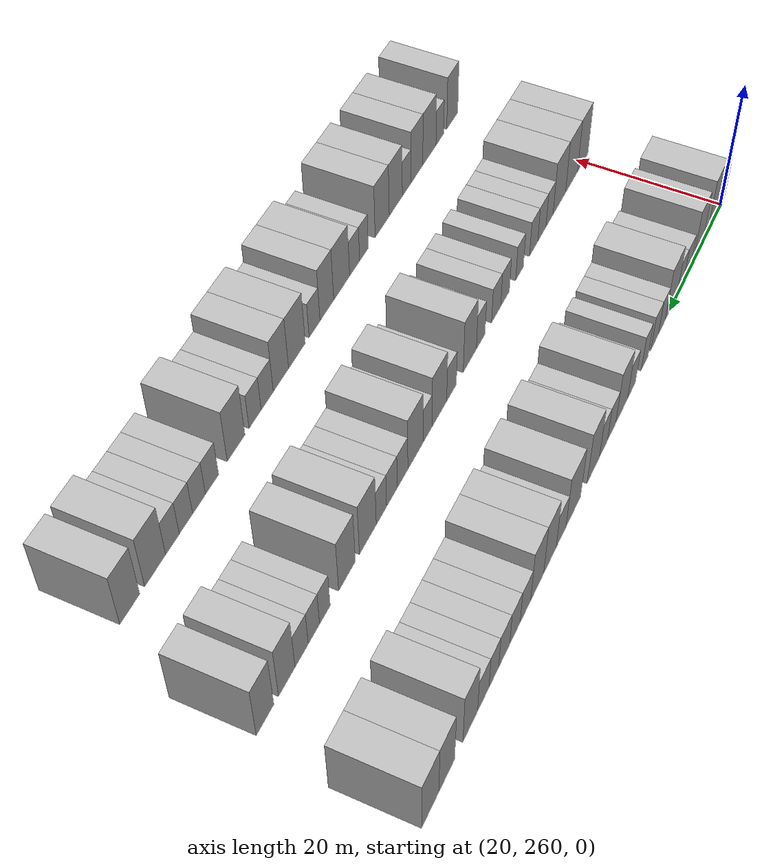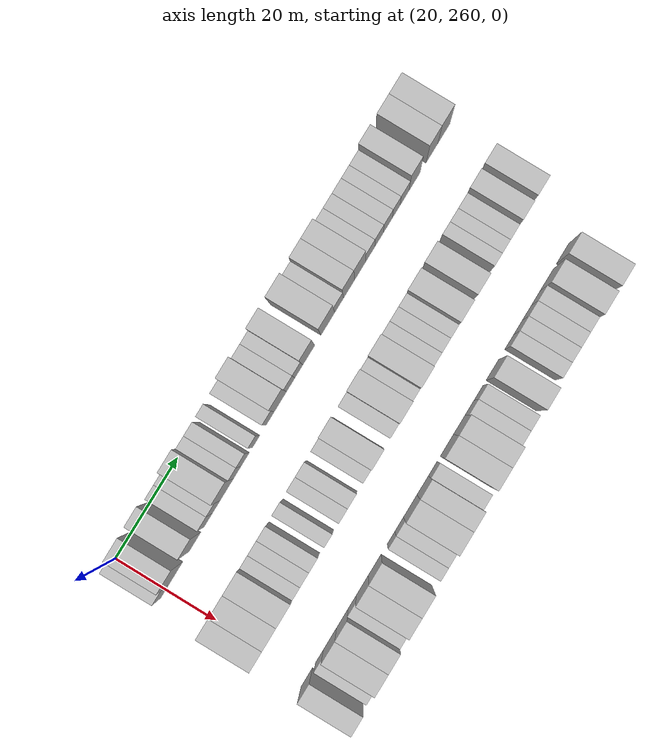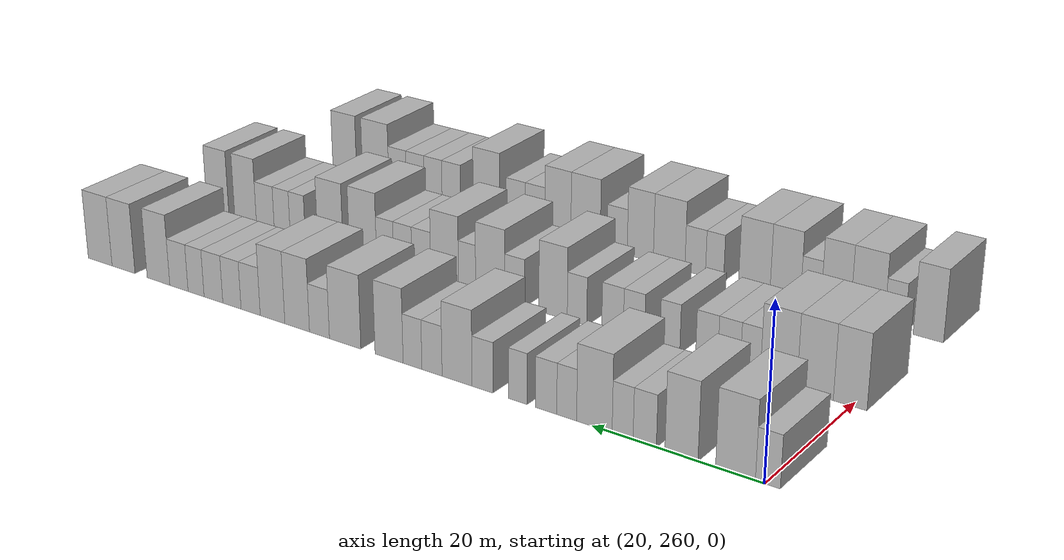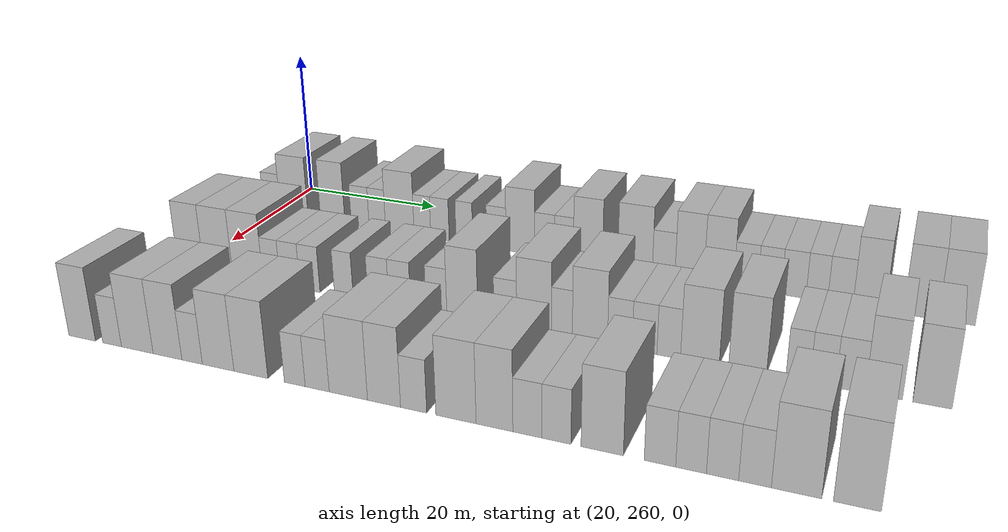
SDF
<sdf version="1.6">
 <world name="default">
  <model name="building_152">
   <static>1</static>
   <pose>25.0000 259.6767 0 0.000000 0.000000 0.000000</pose>
   <link name="link">
    <pose>0 0 3.00 0 0 0</pose>
    <collision name="collision"><geometry><box><size>10.0000 2.7289 6.0000</size></box></geometry></collision>
    <visual name="visual">
     <cast_shadows>0</cast_shadows>
     <geometry><box><size>10.0000 2.7289 6.0000</size></box></geometry>
     <material>
      <script>
       <uri>model://HANNAS_wall/materials/scripts</uri>
       <uri>model://HANNAS_wall/materials/textures</uri>
       <name>vrc/HANNAS_wall</name>
      </script>
     </material>
    </visual>
   </link>
  </model>
  <model name="building_153">
   <static>1</static>
   <pose>25.0000 263.2737 0 0.000000 0.000000 0.000000</pose>
   <link name="link">
    <pose>0 0 4.50 0 0 0</pose>
    <collision name="collision"><geometry><box><size>10.0000 4.4652 9.0000</size></box></geometry></collision>
    <visual name="visual">
     <cast_shadows>0</cast_shadows>
     <geometry><box><size>10.0000 4.4652 9.0000</size></box></geometry>
     <material>
      <script>
       <uri>model://HANNAS_wall/materials/scripts</uri>
       <uri>model://HANNAS_wall/materials/textures</uri>
       <name>vrc/HANNAS_wall</name>
      </script>
     </material>
    </visual>
   </link>
  </model>
  <model name="building_154">
   <static>1</static>
   <pose>25.0000 269.4197 0 0.000000 0.000000 0.000000</pose>
   <link name="link">
    <pose>0 0 4.50 0 0 0</pose>
    <collision name="collision"><geometry><box><size>10.0000 3.8267 9.0000</size></box></geometry></collision>
    <visual name="visual">
     <cast_shadows>0</cast_shadows>
     <geometry><box><size>10.0000 3.8267 9.0000</size></box></geometry>
     <material>
      <script>
       <uri>model://HANNAS_wall/materials/scripts</uri>
       <uri>model://HANNAS_wall/materials/textures</uri>
       <name>vrc/HANNAS_wall</name>
      </script>
     </material>
    </visual>
   </link>
  </model>
  <model name="building_155">
   <static>1</static>
   <pose>25.0000 273.7075 0 0.000000 0.000000 0.000000</pose>
   <link name="link">
    <pose>0 0 3.00 0 0 0</pose>
    <collision name="collision"><geometry><box><size>10.0000 2.7489 6.0000</size></box></geometry></collision>
    <visual name="visual">
     <cast_shadows>0</cast_shadows>
     <geometry><box><size>10.0000 2.7489 6.0000</size></box></geometry>
     <material>
      <script>
       <uri>model://HANNAS_wall/materials/scripts</uri>
       <uri>model://HANNAS_wall/materials/textures</uri>
       <name>vrc/HANNAS_wall</name>
      </script>
     </material>
    </visual>
   </link>
  </model>
  <model name="building_156">
   <static>1</static>
   <pose>25.0000 276.3399 0 0.000000 0.000000 0.000000</pose>
   <link name="link">
    <pose>0 0 3.00 0 0 0</pose>
    <collision name="collision"><geometry><box><size>10.0000 2.5160 6.0000</size></box></geometry></collision>
    <visual name="visual">
     <cast_shadows>0</cast_shadows>
     <geometry><box><size>10.0000 2.5160 6.0000</size></box></geometry>
     <material>
      <script>
       <uri>model://HANNAS_wall/materials/scripts</uri>
       <uri>model://HANNAS_wall/materials/textures</uri>
       <name>vrc/HANNAS_wall</name>
      </script>
     </material>
    </visual>
   </link>
  </model>
  <model name="building_157">
   <static>1</static>
   <pose>25.0000 279.7574 0 0.000000 0.000000 0.000000</pose>
   <link name="link">
    <pose>0 0 4.50 0 0 0</pose>
    <collision name="collision"><geometry><box><size>10.0000 4.3190 9.0000</size></box></geometry></collision>
    <visual name="visual">
     <cast_shadows>0</cast_shadows>
     <geometry><box><size>10.0000 4.3190 9.0000</size></box></geometry>
     <material>
      <script>
       <uri>model://HANNAS_wall/materials/scripts</uri>
       <uri>model://HANNAS_wall/materials/textures</uri>
       <name>vrc/HANNAS_wall</name>
      </script>
     </material>
    </visual>
   </link>
  </model>
  <model name="building_158">
   <static>1</static>
   <pose>25.0000 283.1476 0 0.000000 0.000000 0.000000</pose>
   <link name="link">
    <pose>0 0 3.00 0 0 0</pose>
    <collision name="collision"><geometry><box><size>10.0000 2.4614 6.0000</size></box></geometry></collision>
    <visual name="visual">
     <cast_shadows>0</cast_shadows>
     <geometry><box><size>10.0000 2.4614 6.0000</size></box></geometry>
     <material>
      <script>
       <uri>model://HANNAS_wall/materials/scripts</uri>
       <uri>model://HANNAS_wall/materials/textures</uri>
       <name>vrc/HANNAS_wall</name>
      </script>
     </material>
    </visual>
   </link>
  </model>
  <model name="building_159">
   <static>1</static>
   <pose>25.0000 285.7291 0 0.000000 0.000000 0.000000</pose>
   <link name="link">
    <pose>0 0 3.00 0 0 0</pose>
    <collision name="collision"><geometry><box><size>10.0000 2.7016 6.0000</size></box></geometry></collision>
    <visual name="visual">
     <cast_shadows>0</cast_shadows>
     <geometry><box><size>10.0000 2.7016 6.0000</size></box></geometry>
     <material>
      <script>
       <uri>model://HANNAS_wall/materials/scripts</uri>
       <uri>model://HANNAS_wall/materials/textures</uri>
       <name>vrc/HANNAS_wall</name>
      </script>
     </material>
    </visual>
   </link>
  </model>
  <model name="building_160">
   <static>1</static>
   <pose>25.0000 289.2823 0 0.000000 0.000000 0.000000</pose>
   <link name="link">
    <pose>0 0 3.00 0 0 0</pose>
    <collision name="collision"><geometry><box><size>10.0000 2.4048 6.0000</size></box></geometry></collision>
    <visual name="visual">
     <cast_shadows>0</cast_shadows>
     <geometry><box><size>10.0000 2.4048 6.0000</size></box></geometry>
     <material>
      <script>
       <uri>model://HANNAS_wall/materials/scripts</uri>
       <uri>model://HANNAS_wall/materials/textures</uri>
       <name>vrc/HANNAS_wall</name>
      </script>
     </material>
    </visual>
   </link>
  </model>
  <model name="building_161">
   <static>1</static>
   <pose>25.0000 293.8536 0 0.000000 0.000000 0.000000</pose>
   <link name="link">
    <pose>0 0 3.00 0 0 0</pose>
    <collision name="collision"><geometry><box><size>10.0000 2.7378 6.0000</size></box></geometry></collision>
    <visual name="visual">
     <cast_shadows>0</cast_shadows>
     <geometry><box><size>10.0000 2.7378 6.0000</size></box></geometry>
     <material>
      <script>
       <uri>model://HANNAS_wall/materials/scripts</uri>
       <uri>model://HANNAS_wall/materials/textures</uri>
       <name>vrc/HANNAS_wall</name>
      </script>
     </material>
    </visual>
   </link>
  </model>
  <model name="building_162">
   <static>1</static>
   <pose>25.0000 297.2160 0 0.000000 0.000000 0.000000</pose>
   <link name="link">
    <pose>0 0 4.50 0 0 0</pose>
    <collision name="collision"><geometry><box><size>10.0000 3.9871 9.0000</size></box></geometry></collision>
    <visual name="visual">
     <cast_shadows>0</cast_shadows>
     <geometry><box><size>10.0000 3.9871 9.0000</size></box></geometry>
     <material>
      <script>
       <uri>model://HANNAS_wall/materials/scripts</uri>
       <uri>model://HANNAS_wall/materials/textures</uri>
       <name>vrc/HANNAS_wall</name>
      </script>
     </material>
    </visual>
   </link>
  </model>
  <model name="building_163">
   <static>1</static>
   <pose>25.0000 300.5717 0 0.000000 0.000000 0.000000</pose>
   <link name="link">
    <pose>0 0 3.00 0 0 0</pose>
    <collision name="collision"><geometry><box><size>10.0000 2.7243 6.0000</size></box></geometry></collision>
    <visual name="visual">
     <cast_shadows>0</cast_shadows>
     <geometry><box><size>10.0000 2.7243 6.0000</size></box></geometry>
     <material>
      <script>
       <uri>model://HANNAS_wall/materials/scripts</uri>
       <uri>model://HANNAS_wall/materials/textures</uri>
       <name>vrc/HANNAS_wall</name>
      </script>
     </material>
    </visual>
   </link>
  </model>
  <model name="building_164">
   <static>1</static>
   <pose>25.0000 303.2186 0 0.000000 0.000000 0.000000</pose>
   <link name="link">
    <pose>0 0 3.00 0 0 0</pose>
    <collision name="collision"><geometry><box><size>10.0000 2.5694 6.0000</size></box></geometry></collision>
    <visual name="visual">
     <cast_shadows>0</cast_shadows>
     <geometry><box><size>10.0000 2.5694 6.0000</size></box></geometry>
     <material>
      <script>
       <uri>model://HANNAS_wall/materials/scripts</uri>
       <uri>model://HANNAS_wall/materials/textures</uri>
       <name>vrc/HANNAS_wall</name>
      </script>
     </material>
    </visual>
   </link>
  </model>
  <model name="building_165">
   <static>1</static>
   <pose>25.0000 306.4525 0 0.000000 0.000000 0.000000</pose>
   <link name="link">
    <pose>0 0 4.50 0 0 0</pose>
    <collision name="collision"><geometry><box><size>10.0000 3.8985 9.0000</size></box></geometry></collision>
    <visual name="visual">
     <cast_shadows>0</cast_shadows>
     <geometry><box><size>10.0000 3.8985 9.0000</size></box></geometry>
     <material>
      <script>
       <uri>model://HANNAS_wall/materials/scripts</uri>
       <uri>model://HANNAS_wall/materials/textures</uri>
       <name>vrc/HANNAS_wall</name>
      </script>
     </material>
    </visual>
   </link>
  </model>
  <model name="building_166">
   <static>1</static>
   <pose>25.0000 312.6498 0 0.000000 0.000000 0.000000</pose>
   <link name="link">
    <pose>0 0 4.50 0 0 0</pose>
    <collision name="collision"><geometry><box><size>10.0000 4.4961 9.0000</size></box></geometry></collision>
    <visual name="visual">
     <cast_shadows>0</cast_shadows>
     <geometry><box><size>10.0000 4.4961 9.0000</size></box></geometry>
     <material>
      <script>
       <uri>model://HANNAS_wall/materials/scripts</uri>
       <uri>model://HANNAS_wall/materials/textures</uri>
       <name>vrc/HANNAS_wall</name>
      </script>
     </material>
    </visual>
   </link>
  </model>
  <model name="building_167">
   <static>1</static>
   <pose>25.0000 316.3495 0 0.000000 0.000000 0.000000</pose>
   <link name="link">
    <pose>0 0 3.00 0 0 0</pose>
    <collision name="collision"><geometry><box><size>10.0000 2.9034 6.0000</size></box></geometry></collision>
    <visual name="visual">
     <cast_shadows>0</cast_shadows>
     <geometry><box><size>10.0000 2.9034 6.0000</size></box></geometry>
     <material>
      <script>
       <uri>model://HANNAS_wall/materials/scripts</uri>
       <uri>model://HANNAS_wall/materials/textures</uri>
       <name>vrc/HANNAS_wall</name>
      </script>
     </material>
    </visual>
   </link>
  </model>
  <model name="building_168">
   <static>1</static>
   <pose>25.0000 319.6201 0 0.000000 0.000000 0.000000</pose>
   <link name="link">
    <pose>0 0 4.50 0 0 0</pose>
    <collision name="collision"><geometry><box><size>10.0000 3.6378 9.0000</size></box></geometry></collision>
    <visual name="visual">
     <cast_shadows>0</cast_shadows>
     <geometry><box><size>10.0000 3.6378 9.0000</size></box></geometry>
     <material>
      <script>
       <uri>model://HANNAS_wall/materials/scripts</uri>
       <uri>model://HANNAS_wall/materials/textures</uri>
       <name>vrc/HANNAS_wall</name>
      </script>
     </material>
    </visual>
   </link>
  </model>
  <model name="building_169">
   <static>1</static>
   <pose>25.0000 323.2885 0 0.000000 0.000000 0.000000</pose>
   <link name="link">
    <pose>0 0 4.50 0 0 0</pose>
    <collision name="collision"><geometry><box><size>10.0000 3.6989 9.0000</size></box></geometry></collision>
    <visual name="visual">
     <cast_shadows>0</cast_shadows>
     <geometry><box><size>10.0000 3.6989 9.0000</size></box></geometry>
     <material>
      <script>
       <uri>model://HANNAS_wall/materials/scripts</uri>
       <uri>model://HANNAS_wall/materials/textures</uri>
       <name>vrc/HANNAS_wall</name>
      </script>
     </material>
    </visual>
   </link>
  </model>
  <model name="building_170">
   <static>1</static>
   <pose>25.0000 326.5975 0 0.000000 0.000000 0.000000</pose>
   <link name="link">
    <pose>0 0 3.00 0 0 0</pose>
    <collision name="collision"><geometry><box><size>10.0000 2.9191 6.0000</size></box></geometry></collision>
    <visual name="visual">
     <cast_shadows>0</cast_shadows>
     <geometry><box><size>10.0000 2.9191 6.0000</size></box></geometry>
     <material>
      <script>
       <uri>model://HANNAS_wall/materials/scripts</uri>
       <uri>model://HANNAS_wall/materials/textures</uri>
       <name>vrc/HANNAS_wall</name>
      </script>
     </material>
    </visual>
   </link>
  </model>
  <model name="building_171">
   <static>1</static>
   <pose>25.0000 329.4691 0 0.000000 0.000000 0.000000</pose>
   <link name="link">
    <pose>0 0 3.00 0 0 0</pose>
    <collision name="collision"><geometry><box><size>10.0000 2.8242 6.0000</size></box></geometry></collision>
    <visual name="visual">
     <cast_shadows>0</cast_shadows>
     <geometry><box><size>10.0000 2.8242 6.0000</size></box></geometry>
     <material>
      <script>
       <uri>model://HANNAS_wall/materials/scripts</uri>
       <uri>model://HANNAS_wall/materials/textures</uri>
       <name>vrc/HANNAS_wall</name>
      </script>
     </material>
    </visual>
   </link>
  </model>
  <model name="building_172">
   <static>1</static>
   <pose>25.0000 332.3462 0 0.000000 0.000000 0.000000</pose>
   <link name="link">
    <pose>0 0 3.00 0 0 0</pose>
    <collision name="collision"><geometry><box><size>10.0000 2.9299 6.0000</size></box></geometry></collision>
    <visual name="visual">
     <cast_shadows>0</cast_shadows>
     <geometry><box><size>10.0000 2.9299 6.0000</size></box></geometry>
     <material>
      <script>
       <uri>model://HANNAS_wall/materials/scripts</uri>
       <uri>model://HANNAS_wall/materials/textures</uri>
       <name>vrc/HANNAS_wall</name>
      </script>
     </material>
    </visual>
   </link>
  </model>
  <model name="building_173">
   <static>1</static>
   <pose>25.0000 335.0797 0 0.000000 0.000000 0.000000</pose>
   <link name="link">
    <pose>0 0 3.00 0 0 0</pose>
    <collision name="collision"><geometry><box><size>10.0000 2.5373 6.0000</size></box></geometry></collision>
    <visual name="visual">
     <cast_shadows>0</cast_shadows>
     <geometry><box><size>10.0000 2.5373 6.0000</size></box></geometry>
     <material>
      <script>
       <uri>model://HANNAS_wall/materials/scripts</uri>
       <uri>model://HANNAS_wall/materials/textures</uri>
       <name>vrc/HANNAS_wall</name>
      </script>
     </material>
    </visual>
   </link>
  </model>
  <model name="building_174">
   <static>1</static>
   <pose>25.0000 337.8107 0 0.000000 0.000000 0.000000</pose>
   <link name="link">
    <pose>0 0 3.00 0 0 0</pose>
    <collision name="collision"><geometry><box><size>10.0000 2.9247 6.0000</size></box></geometry></collision>
    <visual name="visual">
     <cast_shadows>0</cast_shadows>
     <geometry><box><size>10.0000 2.9247 6.0000</size></box></geometry>
     <material>
      <script>
       <uri>model://HANNAS_wall/materials/scripts</uri>
       <uri>model://HANNAS_wall/materials/textures</uri>
       <name>vrc/HANNAS_wall</name>
      </script>
     </material>
    </visual>
   </link>
  </model>
  <model name="building_175">
   <static>1</static>
   <pose>25.0000 341.1141 0 0.000000 0.000000 0.000000</pose>
   <link name="link">
    <pose>0 0 4.50 0 0 0</pose>
    <collision name="collision"><geometry><box><size>10.0000 3.6820 9.0000</size></box></geometry></collision>
    <visual name="visual">
     <cast_shadows>0</cast_shadows>
     <geometry><box><size>10.0000 3.6820 9.0000</size></box></geometry>
     <material>
      <script>
       <uri>model://HANNAS_wall/materials/scripts</uri>
       <uri>model://HANNAS_wall/materials/textures</uri>
       <name>vrc/HANNAS_wall</name>
      </script>
     </material>
    </visual>
   </link>
  </model>
  <model name="building_176">
   <static>1</static>
   <pose>25.0000 346.8681 0 0.000000 0.000000 0.000000</pose>
   <link name="link">
    <pose>0 0 4.50 0 0 0</pose>
    <collision name="collision"><geometry><box><size>10.0000 3.8261 9.0000</size></box></geometry></collision>
    <visual name="visual">
     <cast_shadows>0</cast_shadows>
     <geometry><box><size>10.0000 3.8261 9.0000</size></box></geometry>
     <material>
      <script>
       <uri>model://HANNAS_wall/materials/scripts</uri>
       <uri>model://HANNAS_wall/materials/textures</uri>
       <name>vrc/HANNAS_wall</name>
      </script>
     </material>
    </visual>
   </link>
  </model>
  <model name="building_177">
   <static>1</static>
   <pose>25.0000 350.7945 0 0.000000 0.000000 0.000000</pose>
   <link name="link">
    <pose>0 0 4.50 0 0 0</pose>
    <collision name="collision"><geometry><box><size>10.0000 4.0266 9.0000</size></box></geometry></collision>
    <visual name="visual">
     <cast_shadows>0</cast_shadows>
     <geometry><box><size>10.0000 4.0266 9.0000</size></box></geometry>
     <material>
      <script>
       <uri>model://HANNAS_wall/materials/scripts</uri>
       <uri>model://HANNAS_wall/materials/textures</uri>
       <name>vrc/HANNAS_wall</name>
      </script>
     </material>
    </visual>
   </link>
  </model>
  <model name="building_308">
   <static>1</static>
   <pose>44.0000 260.1618 0 0.000000 0.000000 0.000000</pose>
   <link name="link">
    <pose>0 0 4.50 0 0 0</pose>
    <collision name="collision"><geometry><box><size>10.0000 3.8939 9.0000</size></box></geometry></collision>
    <visual name="visual">
     <cast_shadows>0</cast_shadows>
     <geometry><box><size>10.0000 3.8939 9.0000</size></box></geometry>
     <material>
      <script>
       <uri>model://HANNAS_wall/materials/scripts</uri>
       <uri>model://HANNAS_wall/materials/textures</uri>
       <name>vrc/HANNAS_wall</name>
      </script>
     </material>
    </visual>
   </link>
  </model>
  <model name="building_309">
   <static>1</static>
   <pose>44.0000 264.2542 0 0.000000 0.000000 0.000000</pose>
   <link name="link">
    <pose>0 0 4.50 0 0 0</pose>
    <collision name="collision"><geometry><box><size>10.0000 4.2910 9.0000</size></box></geometry></collision>
    <visual name="visual">
     <cast_shadows>0</cast_shadows>
     <geometry><box><size>10.0000 4.2910 9.0000</size></box></geometry>
     <material>
      <script>
       <uri>model://HANNAS_wall/materials/scripts</uri>
       <uri>model://HANNAS_wall/materials/textures</uri>
       <name>vrc/HANNAS_wall</name>
      </script>
     </material>
    </visual>
   </link>
  </model>
  <model name="building_310">
   <static>1</static>
   <pose>44.0000 268.5997 0 0.000000 0.000000 0.000000</pose>
   <link name="link">
    <pose>0 0 4.50 0 0 0</pose>
    <collision name="collision"><geometry><box><size>10.0000 4.3999 9.0000</size></box></geometry></collision>
    <visual name="visual">
     <cast_shadows>0</cast_shadows>
     <geometry><box><size>10.0000 4.3999 9.0000</size></box></geometry>
     <material>
      <script>
       <uri>model://HANNAS_wall/materials/scripts</uri>
       <uri>model://HANNAS_wall/materials/textures</uri>
       <name>vrc/HANNAS_wall</name>
      </script>
     </material>
    </visual>
   </link>
  </model>
  <model name="building_311">
   <static>1</static>
   <pose>44.0000 272.0270 0 0.000000 0.000000 0.000000</pose>
   <link name="link">
    <pose>0 0 3.00 0 0 0</pose>
    <collision name="collision"><geometry><box><size>10.0000 2.4548 6.0000</size></box></geometry></collision>
    <visual name="visual">
     <cast_shadows>0</cast_shadows>
     <geometry><box><size>10.0000 2.4548 6.0000</size></box></geometry>
     <material>
      <script>
       <uri>model://HANNAS_wall/materials/scripts</uri>
       <uri>model://HANNAS_wall/materials/textures</uri>
       <name>vrc/HANNAS_wall</name>
      </script>
     </material>
    </visual>
   </link>
  </model>
  <model name="building_312">
   <static>1</static>
   <pose>44.0000 274.6422 0 0.000000 0.000000 0.000000</pose>
   <link name="link">
    <pose>0 0 3.00 0 0 0</pose>
    <collision name="collision"><geometry><box><size>10.0000 2.7756 6.0000</size></box></geometry></collision>
    <visual name="visual">
     <cast_shadows>0</cast_shadows>
     <geometry><box><size>10.0000 2.7756 6.0000</size></box></geometry>
     <material>
      <script>
       <uri>model://HANNAS_wall/materials/scripts</uri>
       <uri>model://HANNAS_wall/materials/textures</uri>
       <name>vrc/HANNAS_wall</name>
      </script>
     </material>
    </visual>
   </link>
  </model>
  <model name="building_313">
   <static>1</static>
   <pose>44.0000 277.4162 0 0.000000 0.000000 0.000000</pose>
   <link name="link">
    <pose>0 0 3.00 0 0 0</pose>
    <collision name="collision"><geometry><box><size>10.0000 2.7723 6.0000</size></box></geometry></collision>
    <visual name="visual">
     <cast_shadows>0</cast_shadows>
     <geometry><box><size>10.0000 2.7723 6.0000</size></box></geometry>
     <material>
      <script>
       <uri>model://HANNAS_wall/materials/scripts</uri>
       <uri>model://HANNAS_wall/materials/textures</uri>
       <name>vrc/HANNAS_wall</name>
      </script>
     </material>
    </visual>
   </link>
  </model>
  <model name="building_314">
   <static>1</static>
   <pose>44.0000 282.0756 0 0.000000 0.000000 0.000000</pose>
   <link name="link">
    <pose>0 0 3.00 0 0 0</pose>
    <collision name="collision"><geometry><box><size>10.0000 2.5465 6.0000</size></box></geometry></collision>
    <visual name="visual">
     <cast_shadows>0</cast_shadows>
     <geometry><box><size>10.0000 2.5465 6.0000</size></box></geometry>
     <material>
      <script>
       <uri>model://HANNAS_wall/materials/scripts</uri>
       <uri>model://HANNAS_wall/materials/textures</uri>
       <name>vrc/HANNAS_wall</name>
      </script>
     </material>
    </visual>
   </link>
  </model>
  <model name="building_315">
   <static>1</static>
   <pose>44.0000 286.7328 0 0.000000 0.000000 0.000000</pose>
   <link name="link">
    <pose>0 0 3.00 0 0 0</pose>
    <collision name="collision"><geometry><box><size>10.0000 2.7679 6.0000</size></box></geometry></collision>
    <visual name="visual">
     <cast_shadows>0</cast_shadows>
     <geometry><box><size>10.0000 2.7679 6.0000</size></box></geometry>
     <material>
      <script>
       <uri>model://HANNAS_wall/materials/scripts</uri>
       <uri>model://HANNAS_wall/materials/textures</uri>
       <name>vrc/HANNAS_wall</name>
      </script>
     </material>
    </visual>
   </link>
  </model>
  <model name="building_316">
   <static>1</static>
   <pose>44.0000 289.5456 0 0.000000 0.000000 0.000000</pose>
   <link name="link">
    <pose>0 0 3.00 0 0 0</pose>
    <collision name="collision"><geometry><box><size>10.0000 2.8577 6.0000</size></box></geometry></collision>
    <visual name="visual">
     <cast_shadows>0</cast_shadows>
     <geometry><box><size>10.0000 2.8577 6.0000</size></box></geometry>
     <material>
      <script>
       <uri>model://HANNAS_wall/materials/scripts</uri>
       <uri>model://HANNAS_wall/materials/textures</uri>
       <name>vrc/HANNAS_wall</name>
      </script>
     </material>
    </visual>
   </link>
  </model>
  <model name="building_317">
   <static>1</static>
   <pose>44.0000 294.2979 0 0.000000 0.000000 0.000000</pose>
   <link name="link">
    <pose>0 0 3.00 0 0 0</pose>
    <collision name="collision"><geometry><box><size>10.0000 2.6469 6.0000</size></box></geometry></collision>
    <visual name="visual">
     <cast_shadows>0</cast_shadows>
     <geometry><box><size>10.0000 2.6469 6.0000</size></box></geometry>
     <material>
      <script>
       <uri>model://HANNAS_wall/materials/scripts</uri>
       <uri>model://HANNAS_wall/materials/textures</uri>
       <name>vrc/HANNAS_wall</name>
      </script>
     </material>
    </visual>
   </link>
  </model>
  <model name="building_318">
   <static>1</static>
   <pose>44.0000 297.5724 0 0.000000 0.000000 0.000000</pose>
   <link name="link">
    <pose>0 0 4.50 0 0 0</pose>
    <collision name="collision"><geometry><box><size>10.0000 3.9022 9.0000</size></box></geometry></collision>
    <visual name="visual">
     <cast_shadows>0</cast_shadows>
     <geometry><box><size>10.0000 3.9022 9.0000</size></box></geometry>
     <material>
      <script>
       <uri>model://HANNAS_wall/materials/scripts</uri>
       <uri>model://HANNAS_wall/materials/textures</uri>
       <name>vrc/HANNAS_wall</name>
      </script>
     </material>
    </visual>
   </link>
  </model>
  <model name="building_319">
   <static>1</static>
   <pose>44.0000 302.9195 0 0.000000 0.000000 0.000000</pose>
   <link name="link">
    <pose>0 0 3.00 0 0 0</pose>
    <collision name="collision"><geometry><box><size>10.0000 2.7921 6.0000</size></box></geometry></collision>
    <visual name="visual">
     <cast_shadows>0</cast_shadows>
     <geometry><box><size>10.0000 2.7921 6.0000</size></box></geometry>
     <material>
      <script>
       <uri>model://HANNAS_wall/materials/scripts</uri>
       <uri>model://HANNAS_wall/materials/textures</uri>
       <name>vrc/HANNAS_wall</name>
      </script>
     </material>
    </visual>
   </link>
  </model>
  <model name="building_320">
   <static>1</static>
   <pose>44.0000 306.3910 0 0.000000 0.000000 0.000000</pose>
   <link name="link">
    <pose>0 0 4.50 0 0 0</pose>
    <collision name="collision"><geometry><box><size>10.0000 4.1510 9.0000</size></box></geometry></collision>
    <visual name="visual">
     <cast_shadows>0</cast_shadows>
     <geometry><box><size>10.0000 4.1510 9.0000</size></box></geometry>
     <material>
      <script>
       <uri>model://HANNAS_wall/materials/scripts</uri>
       <uri>model://HANNAS_wall/materials/textures</uri>
       <name>vrc/HANNAS_wall</name>
      </script>
     </material>
    </visual>
   </link>
  </model>
  <model name="building_321">
   <static>1</static>
   <pose>44.0000 309.7062 0 0.000000 0.000000 0.000000</pose>
   <link name="link">
    <pose>0 0 3.00 0 0 0</pose>
    <collision name="collision"><geometry><box><size>10.0000 2.4793 6.0000</size></box></geometry></collision>
    <visual name="visual">
     <cast_shadows>0</cast_shadows>
     <geometry><box><size>10.0000 2.4793 6.0000</size></box></geometry>
     <material>
      <script>
       <uri>model://HANNAS_wall/materials/scripts</uri>
       <uri>model://HANNAS_wall/materials/textures</uri>
       <name>vrc/HANNAS_wall</name>
      </script>
     </material>
    </visual>
   </link>
  </model>
  <model name="building_322">
   <static>1</static>
   <pose>44.0000 312.9898 0 0.000000 0.000000 0.000000</pose>
   <link name="link">
    <pose>0 0 4.50 0 0 0</pose>
    <collision name="collision"><geometry><box><size>10.0000 4.0880 9.0000</size></box></geometry></collision>
    <visual name="visual">
     <cast_shadows>0</cast_shadows>
     <geometry><box><size>10.0000 4.0880 9.0000</size></box></geometry>
     <material>
      <script>
       <uri>model://HANNAS_wall/materials/scripts</uri>
       <uri>model://HANNAS_wall/materials/textures</uri>
       <name>vrc/HANNAS_wall</name>
      </script>
     </material>
    </visual>
   </link>
  </model>
  <model name="building_323">
   <static>1</static>
   <pose>44.0000 316.4430 0 0.000000 0.000000 0.000000</pose>
   <link name="link">
    <pose>0 0 3.00 0 0 0</pose>
    <collision name="collision"><geometry><box><size>10.0000 2.8183 6.0000</size></box></geometry></collision>
    <visual name="visual">
     <cast_shadows>0</cast_shadows>
     <geometry><box><size>10.0000 2.8183 6.0000</size></box></geometry>
     <material>
      <script>
       <uri>model://HANNAS_wall/materials/scripts</uri>
       <uri>model://HANNAS_wall/materials/textures</uri>
       <name>vrc/HANNAS_wall</name>
      </script>
     </material>
    </visual>
   </link>
  </model>
  <model name="building_324">
   <static>1</static>
   <pose>44.0000 319.2434 0 0.000000 0.000000 0.000000</pose>
   <link name="link">
    <pose>0 0 3.00 0 0 0</pose>
    <collision name="collision"><geometry><box><size>10.0000 2.7825 6.0000</size></box></geometry></collision>
    <visual name="visual">
     <cast_shadows>0</cast_shadows>
     <geometry><box><size>10.0000 2.7825 6.0000</size></box></geometry>
     <material>
      <script>
       <uri>model://HANNAS_wall/materials/scripts</uri>
       <uri>model://HANNAS_wall/materials/textures</uri>
       <name>vrc/HANNAS_wall</name>
      </script>
     </material>
    </visual>
   </link>
  </model>
  <model name="building_325">
   <static>1</static>
   <pose>44.0000 321.9391 0 0.000000 0.000000 0.000000</pose>
   <link name="link">
    <pose>0 0 3.00 0 0 0</pose>
    <collision name="collision"><geometry><box><size>10.0000 2.6089 6.0000</size></box></geometry></collision>
    <visual name="visual">
     <cast_shadows>0</cast_shadows>
     <geometry><box><size>10.0000 2.6089 6.0000</size></box></geometry>
     <material>
      <script>
       <uri>model://HANNAS_wall/materials/scripts</uri>
       <uri>model://HANNAS_wall/materials/textures</uri>
       <name>vrc/HANNAS_wall</name>
      </script>
     </material>
    </visual>
   </link>
  </model>
  <model name="building_326">
   <static>1</static>
   <pose>44.0000 325.3527 0 0.000000 0.000000 0.000000</pose>
   <link name="link">
    <pose>0 0 4.50 0 0 0</pose>
    <collision name="collision"><geometry><box><size>10.0000 4.2183 9.0000</size></box></geometry></collision>
    <visual name="visual">
     <cast_shadows>0</cast_shadows>
     <geometry><box><size>10.0000 4.2183 9.0000</size></box></geometry>
     <material>
      <script>
       <uri>model://HANNAS_wall/materials/scripts</uri>
       <uri>model://HANNAS_wall/materials/textures</uri>
       <name>vrc/HANNAS_wall</name>
      </script>
     </material>
    </visual>
   </link>
  </model>
  <model name="building_327">
   <static>1</static>
   <pose>44.0000 330.4764 0 0.000000 0.000000 0.000000</pose>
   <link name="link">
    <pose>0 0 4.50 0 0 0</pose>
    <collision name="collision"><geometry><box><size>10.0000 4.0291 9.0000</size></box></geometry></collision>
    <visual name="visual">
     <cast_shadows>0</cast_shadows>
     <geometry><box><size>10.0000 4.0291 9.0000</size></box></geometry>
     <material>
      <script>
       <uri>model://HANNAS_wall/materials/scripts</uri>
       <uri>model://HANNAS_wall/materials/textures</uri>
       <name>vrc/HANNAS_wall</name>
      </script>
     </material>
    </visual>
   </link>
  </model>
  <model name="building_328">
   <static>1</static>
   <pose>44.0000 335.7265 0 0.000000 0.000000 0.000000</pose>
   <link name="link">
    <pose>0 0 3.00 0 0 0</pose>
    <collision name="collision"><geometry><box><size>10.0000 2.4711 6.0000</size></box></geometry></collision>
    <visual name="visual">
     <cast_shadows>0</cast_shadows>
     <geometry><box><size>10.0000 2.4711 6.0000</size></box></geometry>
     <material>
      <script>
       <uri>model://HANNAS_wall/materials/scripts</uri>
       <uri>model://HANNAS_wall/materials/textures</uri>
       <name>vrc/HANNAS_wall</name>
      </script>
     </material>
    </visual>
   </link>
  </model>
  <model name="building_329">
   <static>1</static>
   <pose>44.0000 338.2605 0 0.000000 0.000000 0.000000</pose>
   <link name="link">
    <pose>0 0 3.00 0 0 0</pose>
    <collision name="collision"><geometry><box><size>10.0000 2.5969 6.0000</size></box></geometry></collision>
    <visual name="visual">
     <cast_shadows>0</cast_shadows>
     <geometry><box><size>10.0000 2.5969 6.0000</size></box></geometry>
     <material>
      <script>
       <uri>model://HANNAS_wall/materials/scripts</uri>
       <uri>model://HANNAS_wall/materials/textures</uri>
       <name>vrc/HANNAS_wall</name>
      </script>
     </material>
    </visual>
   </link>
  </model>
  <model name="building_330">
   <static>1</static>
   <pose>44.0000 341.0403 0 0.000000 0.000000 0.000000</pose>
   <link name="link">
    <pose>0 0 3.00 0 0 0</pose>
    <collision name="collision"><geometry><box><size>10.0000 2.9626 6.0000</size></box></geometry></collision>
    <visual name="visual">
     <cast_shadows>0</cast_shadows>
     <geometry><box><size>10.0000 2.9626 6.0000</size></box></geometry>
     <material>
      <script>
       <uri>model://HANNAS_wall/materials/scripts</uri>
       <uri>model://HANNAS_wall/materials/textures</uri>
       <name>vrc/HANNAS_wall</name>
      </script>
     </material>
    </visual>
   </link>
  </model>
  <model name="building_331">
   <static>1</static>
   <pose>44.0000 344.3420 0 0.000000 0.000000 0.000000</pose>
   <link name="link">
    <pose>0 0 4.50 0 0 0</pose>
    <collision name="collision"><geometry><box><size>10.0000 3.6408 9.0000</size></box></geometry></collision>
    <visual name="visual">
     <cast_shadows>0</cast_shadows>
     <geometry><box><size>10.0000 3.6408 9.0000</size></box></geometry>
     <material>
      <script>
       <uri>model://HANNAS_wall/materials/scripts</uri>
       <uri>model://HANNAS_wall/materials/textures</uri>
       <name>vrc/HANNAS_wall</name>
      </script>
     </material>
    </visual>
   </link>
  </model>
  <model name="building_332">
   <static>1</static>
   <pose>44.0000 349.0337 0 0.000000 0.000000 0.000000</pose>
   <link name="link">
    <pose>0 0 4.50 0 0 0</pose>
    <collision name="collision"><geometry><box><size>10.0000 3.7426 9.0000</size></box></geometry></collision>
    <visual name="visual">
     <cast_shadows>0</cast_shadows>
     <geometry><box><size>10.0000 3.7426 9.0000</size></box></geometry>
     <material>
      <script>
       <uri>model://HANNAS_wall/materials/scripts</uri>
       <uri>model://HANNAS_wall/materials/textures</uri>
       <name>vrc/HANNAS_wall</name>
      </script>
     </material>
    </visual>
   </link>
  </model>
  <model name="building_485">
   <static>1</static>
   <pose>63.0000 259.8541 0 0.000000 0.000000 0.000000</pose>
   <link name="link">
    <pose>0 0 4.50 0 0 0</pose>
    <collision name="collision"><geometry><box><size>10.0000 3.6695 9.0000</size></box></geometry></collision>
    <visual name="visual">
     <cast_shadows>0</cast_shadows>
     <geometry><box><size>10.0000 3.6695 9.0000</size></box></geometry>
     <material>
      <script>
       <uri>model://HANNAS_wall/materials/scripts</uri>
       <uri>model://HANNAS_wall/materials/textures</uri>
       <name>vrc/HANNAS_wall</name>
      </script>
     </material>
    </visual>
   </link>
  </model>
  <model name="building_486">
   <static>1</static>
   <pose>63.0000 263.9567 0 0.000000 0.000000 0.000000</pose>
   <link name="link">
    <pose>0 0 3.00 0 0 0</pose>
    <collision name="collision"><geometry><box><size>10.0000 2.5357 6.0000</size></box></geometry></collision>
    <visual name="visual">
     <cast_shadows>0</cast_shadows>
     <geometry><box><size>10.0000 2.5357 6.0000</size></box></geometry>
     <material>
      <script>
       <uri>model://HANNAS_wall/materials/scripts</uri>
       <uri>model://HANNAS_wall/materials/textures</uri>
       <name>vrc/HANNAS_wall</name>
      </script>
     </material>
    </visual>
   </link>
  </model>
  <model name="building_487">
   <static>1</static>
   <pose>63.0000 267.3367 0 0.000000 0.000000 0.000000</pose>
   <link name="link">
    <pose>0 0 4.50 0 0 0</pose>
    <collision name="collision"><geometry><box><size>10.0000 4.2243 9.0000</size></box></geometry></collision>
    <visual name="visual">
     <cast_shadows>0</cast_shadows>
     <geometry><box><size>10.0000 4.2243 9.0000</size></box></geometry>
     <material>
      <script>
       <uri>model://HANNAS_wall/materials/scripts</uri>
       <uri>model://HANNAS_wall/materials/textures</uri>
       <name>vrc/HANNAS_wall</name>
      </script>
     </material>
    </visual>
   </link>
  </model>
  <model name="building_488">
   <static>1</static>
   <pose>63.0000 271.3230 0 0.000000 0.000000 0.000000</pose>
   <link name="link">
    <pose>0 0 4.50 0 0 0</pose>
    <collision name="collision"><geometry><box><size>10.0000 3.7483 9.0000</size></box></geometry></collision>
    <visual name="visual">
     <cast_shadows>0</cast_shadows>
     <geometry><box><size>10.0000 3.7483 9.0000</size></box></geometry>
     <material>
      <script>
       <uri>model://HANNAS_wall/materials/scripts</uri>
       <uri>model://HANNAS_wall/materials/textures</uri>
       <name>vrc/HANNAS_wall</name>
      </script>
     </material>
    </visual>
   </link>
  </model>
  <model name="building_489">
   <static>1</static>
   <pose>63.0000 274.5112 0 0.000000 0.000000 0.000000</pose>
   <link name="link">
    <pose>0 0 3.00 0 0 0</pose>
    <collision name="collision"><geometry><box><size>10.0000 2.6280 6.0000</size></box></geometry></collision>
    <visual name="visual">
     <cast_shadows>0</cast_shadows>
     <geometry><box><size>10.0000 2.6280 6.0000</size></box></geometry>
     <material>
      <script>
       <uri>model://HANNAS_wall/materials/scripts</uri>
       <uri>model://HANNAS_wall/materials/textures</uri>
       <name>vrc/HANNAS_wall</name>
      </script>
     </material>
    </visual>
   </link>
  </model>
  <model name="building_490">
   <static>1</static>
   <pose>63.0000 277.8118 0 0.000000 0.000000 0.000000</pose>
   <link name="link">
    <pose>0 0 4.50 0 0 0</pose>
    <collision name="collision"><geometry><box><size>10.0000 3.9733 9.0000</size></box></geometry></collision>
    <visual name="visual">
     <cast_shadows>0</cast_shadows>
     <geometry><box><size>10.0000 3.9733 9.0000</size></box></geometry>
     <material>
      <script>
       <uri>model://HANNAS_wall/materials/scripts</uri>
       <uri>model://HANNAS_wall/materials/textures</uri>
       <name>vrc/HANNAS_wall</name>
      </script>
     </material>
    </visual>
   </link>
  </model>
  <model name="building_491">
   <static>1</static>
   <pose>63.0000 281.8885 0 0.000000 0.000000 0.000000</pose>
   <link name="link">
    <pose>0 0 4.50 0 0 0</pose>
    <collision name="collision"><geometry><box><size>10.0000 4.1801 9.0000</size></box></geometry></collision>
    <visual name="visual">
     <cast_shadows>0</cast_shadows>
     <geometry><box><size>10.0000 4.1801 9.0000</size></box></geometry>
     <material>
      <script>
       <uri>model://HANNAS_wall/materials/scripts</uri>
       <uri>model://HANNAS_wall/materials/textures</uri>
       <name>vrc/HANNAS_wall</name>
      </script>
     </material>
    </visual>
   </link>
  </model>
  <model name="building_492">
   <static>1</static>
   <pose>63.0000 287.2206 0 0.000000 0.000000 0.000000</pose>
   <link name="link">
    <pose>0 0 3.00 0 0 0</pose>
    <collision name="collision"><geometry><box><size>10.0000 2.4840 6.0000</size></box></geometry></collision>
    <visual name="visual">
     <cast_shadows>0</cast_shadows>
     <geometry><box><size>10.0000 2.4840 6.0000</size></box></geometry>
     <material>
      <script>
       <uri>model://HANNAS_wall/materials/scripts</uri>
       <uri>model://HANNAS_wall/materials/textures</uri>
       <name>vrc/HANNAS_wall</name>
      </script>
     </material>
    </visual>
   </link>
  </model>
  <model name="building_493">
   <static>1</static>
   <pose>63.0000 289.8745 0 0.000000 0.000000 0.000000</pose>
   <link name="link">
    <pose>0 0 3.00 0 0 0</pose>
    <collision name="collision"><geometry><box><size>10.0000 2.8240 6.0000</size></box></geometry></collision>
    <visual name="visual">
     <cast_shadows>0</cast_shadows>
     <geometry><box><size>10.0000 2.8240 6.0000</size></box></geometry>
     <material>
      <script>
       <uri>model://HANNAS_wall/materials/scripts</uri>
       <uri>model://HANNAS_wall/materials/textures</uri>
       <name>vrc/HANNAS_wall</name>
      </script>
     </material>
    </visual>
   </link>
  </model>
  <model name="building_494">
   <static>1</static>
   <pose>63.0000 293.4942 0 0.000000 0.000000 0.000000</pose>
   <link name="link">
    <pose>0 0 4.50 0 0 0</pose>
    <collision name="collision"><geometry><box><size>10.0000 4.4153 9.0000</size></box></geometry></collision>
    <visual name="visual">
     <cast_shadows>0</cast_shadows>
     <geometry><box><size>10.0000 4.4153 9.0000</size></box></geometry>
     <material>
      <script>
       <uri>model://HANNAS_wall/materials/scripts</uri>
       <uri>model://HANNAS_wall/materials/textures</uri>
       <name>vrc/HANNAS_wall</name>
      </script>
     </material>
    </visual>
   </link>
  </model>
  <model name="building_495">
   <static>1</static>
   <pose>63.0000 297.5628 0 0.000000 0.000000 0.000000</pose>
   <link name="link">
    <pose>0 0 4.50 0 0 0</pose>
    <collision name="collision"><geometry><box><size>10.0000 3.7219 9.0000</size></box></geometry></collision>
    <visual name="visual">
     <cast_shadows>0</cast_shadows>
     <geometry><box><size>10.0000 3.7219 9.0000</size></box></geometry>
     <material>
      <script>
       <uri>model://HANNAS_wall/materials/scripts</uri>
       <uri>model://HANNAS_wall/materials/textures</uri>
       <name>vrc/HANNAS_wall</name>
      </script>
     </material>
    </visual>
   </link>
  </model>
  <model name="building_496">
   <static>1</static>
   <pose>63.0000 300.8689 0 0.000000 0.000000 0.000000</pose>
   <link name="link">
    <pose>0 0 3.00 0 0 0</pose>
    <collision name="collision"><geometry><box><size>10.0000 2.8903 6.0000</size></box></geometry></collision>
    <visual name="visual">
     <cast_shadows>0</cast_shadows>
     <geometry><box><size>10.0000 2.8903 6.0000</size></box></geometry>
     <material>
      <script>
       <uri>model://HANNAS_wall/materials/scripts</uri>
       <uri>model://HANNAS_wall/materials/textures</uri>
       <name>vrc/HANNAS_wall</name>
      </script>
     </material>
    </visual>
   </link>
  </model>
  <model name="building_497">
   <static>1</static>
   <pose>63.0000 305.4727 0 0.000000 0.000000 0.000000</pose>
   <link name="link">
    <pose>0 0 4.50 0 0 0</pose>
    <collision name="collision"><geometry><box><size>10.0000 4.3174 9.0000</size></box></geometry></collision>
    <visual name="visual">
     <cast_shadows>0</cast_shadows>
     <geometry><box><size>10.0000 4.3174 9.0000</size></box></geometry>
     <material>
      <script>
       <uri>model://HANNAS_wall/materials/scripts</uri>
       <uri>model://HANNAS_wall/materials/textures</uri>
       <name>vrc/HANNAS_wall</name>
      </script>
     </material>
    </visual>
   </link>
  </model>
  <model name="building_498">
   <static>1</static>
   <pose>63.0000 309.5610 0 0.000000 0.000000 0.000000</pose>
   <link name="link">
    <pose>0 0 4.50 0 0 0</pose>
    <collision name="collision"><geometry><box><size>10.0000 3.8590 9.0000</size></box></geometry></collision>
    <visual name="visual">
     <cast_shadows>0</cast_shadows>
     <geometry><box><size>10.0000 3.8590 9.0000</size></box></geometry>
     <material>
      <script>
       <uri>model://HANNAS_wall/materials/scripts</uri>
       <uri>model://HANNAS_wall/materials/textures</uri>
       <name>vrc/HANNAS_wall</name>
      </script>
     </material>
    </visual>
   </link>
  </model>
  <model name="building_499">
   <static>1</static>
   <pose>63.0000 312.9844 0 0.000000 0.000000 0.000000</pose>
   <link name="link">
    <pose>0 0 3.00 0 0 0</pose>
    <collision name="collision"><geometry><box><size>10.0000 2.9877 6.0000</size></box></geometry></collision>
    <visual name="visual">
     <cast_shadows>0</cast_shadows>
     <geometry><box><size>10.0000 2.9877 6.0000</size></box></geometry>
     <material>
      <script>
       <uri>model://HANNAS_wall/materials/scripts</uri>
       <uri>model://HANNAS_wall/materials/textures</uri>
       <name>vrc/HANNAS_wall</name>
      </script>
     </material>
    </visual>
   </link>
  </model>
  <model name="building_500">
   <static>1</static>
   <pose>63.0000 315.9428 0 0.000000 0.000000 0.000000</pose>
   <link name="link">
    <pose>0 0 3.00 0 0 0</pose>
    <collision name="collision"><geometry><box><size>10.0000 2.9292 6.0000</size></box></geometry></collision>
    <visual name="visual">
     <cast_shadows>0</cast_shadows>
     <geometry><box><size>10.0000 2.9292 6.0000</size></box></geometry>
     <material>
      <script>
       <uri>model://HANNAS_wall/materials/scripts</uri>
       <uri>model://HANNAS_wall/materials/textures</uri>
       <name>vrc/HANNAS_wall</name>
      </script>
     </material>
    </visual>
   </link>
  </model>
  <model name="building_501">
   <static>1</static>
   <pose>63.0000 320.4830 0 0.000000 0.000000 0.000000</pose>
   <link name="link">
    <pose>0 0 4.50 0 0 0</pose>
    <collision name="collision"><geometry><box><size>10.0000 4.1512 9.0000</size></box></geometry></collision>
    <visual name="visual">
     <cast_shadows>0</cast_shadows>
     <geometry><box><size>10.0000 4.1512 9.0000</size></box></geometry>
     <material>
      <script>
       <uri>model://HANNAS_wall/materials/scripts</uri>
       <uri>model://HANNAS_wall/materials/textures</uri>
       <name>vrc/HANNAS_wall</name>
      </script>
     </material>
    </visual>
   </link>
  </model>
  <model name="building_502">
   <static>1</static>
   <pose>63.0000 326.0491 0 0.000000 0.000000 0.000000</pose>
   <link name="link">
    <pose>0 0 3.00 0 0 0</pose>
    <collision name="collision"><geometry><box><size>10.0000 2.9811 6.0000</size></box></geometry></collision>
    <visual name="visual">
     <cast_shadows>0</cast_shadows>
     <geometry><box><size>10.0000 2.9811 6.0000</size></box></geometry>
     <material>
      <script>
       <uri>model://HANNAS_wall/materials/scripts</uri>
       <uri>model://HANNAS_wall/materials/textures</uri>
       <name>vrc/HANNAS_wall</name>
      </script>
     </material>
    </visual>
   </link>
  </model>
  <model name="building_503">
   <static>1</static>
   <pose>63.0000 328.9670 0 0.000000 0.000000 0.000000</pose>
   <link name="link">
    <pose>0 0 3.00 0 0 0</pose>
    <collision name="collision"><geometry><box><size>10.0000 2.8547 6.0000</size></box></geometry></collision>
    <visual name="visual">
     <cast_shadows>0</cast_shadows>
     <geometry><box><size>10.0000 2.8547 6.0000</size></box></geometry>
     <material>
      <script>
       <uri>model://HANNAS_wall/materials/scripts</uri>
       <uri>model://HANNAS_wall/materials/textures</uri>
       <name>vrc/HANNAS_wall</name>
      </script>
     </material>
    </visual>
   </link>
  </model>
  <model name="building_504">
   <static>1</static>
   <pose>63.0000 331.8643 0 0.000000 0.000000 0.000000</pose>
   <link name="link">
    <pose>0 0 3.00 0 0 0</pose>
    <collision name="collision"><geometry><box><size>10.0000 2.9398 6.0000</size></box></geometry></collision>
    <visual name="visual">
     <cast_shadows>0</cast_shadows>
     <geometry><box><size>10.0000 2.9398 6.0000</size></box></geometry>
     <material>
      <script>
       <uri>model://HANNAS_wall/materials/scripts</uri>
       <uri>model://HANNAS_wall/materials/textures</uri>
       <name>vrc/HANNAS_wall</name>
      </script>
     </material>
    </visual>
   </link>
  </model>
  <model name="building_505">
   <static>1</static>
   <pose>63.0000 334.7977 0 0.000000 0.000000 0.000000</pose>
   <link name="link">
    <pose>0 0 3.00 0 0 0</pose>
    <collision name="collision"><geometry><box><size>10.0000 2.9271 6.0000</size></box></geometry></collision>
    <visual name="visual">
     <cast_shadows>0</cast_shadows>
     <geometry><box><size>10.0000 2.9271 6.0000</size></box></geometry>
     <material>
      <script>
       <uri>model://HANNAS_wall/materials/scripts</uri>
       <uri>model://HANNAS_wall/materials/textures</uri>
       <name>vrc/HANNAS_wall</name>
      </script>
     </material>
    </visual>
   </link>
  </model>
  <model name="building_506">
   <static>1</static>
   <pose>63.0000 338.4622 0 0.000000 0.000000 0.000000</pose>
   <link name="link">
    <pose>0 0 4.50 0 0 0</pose>
    <collision name="collision"><geometry><box><size>10.0000 4.4019 9.0000</size></box></geometry></collision>
    <visual name="visual">
     <cast_shadows>0</cast_shadows>
     <geometry><box><size>10.0000 4.4019 9.0000</size></box></geometry>
     <material>
      <script>
       <uri>model://HANNAS_wall/materials/scripts</uri>
       <uri>model://HANNAS_wall/materials/textures</uri>
       <name>vrc/HANNAS_wall</name>
      </script>
     </material>
    </visual>
   </link>
  </model>
  <model name="building_507">
   <static>1</static>
   <pose>63.0000 343.6938 0 0.000000 0.000000 0.000000</pose>
   <link name="link">
    <pose>0 0 4.50 0 0 0</pose>
    <collision name="collision"><geometry><box><size>10.0000 4.0613 9.0000</size></box></geometry></collision>
    <visual name="visual">
     <cast_shadows>0</cast_shadows>
     <geometry><box><size>10.0000 4.0613 9.0000</size></box></geometry>
     <material>
      <script>
       <uri>model://HANNAS_wall/materials/scripts</uri>
       <uri>model://HANNAS_wall/materials/textures</uri>
       <name>vrc/HANNAS_wall</name>
      </script>
     </material>
    </visual>
   </link>
  </model>
 </world>
</sdf>
